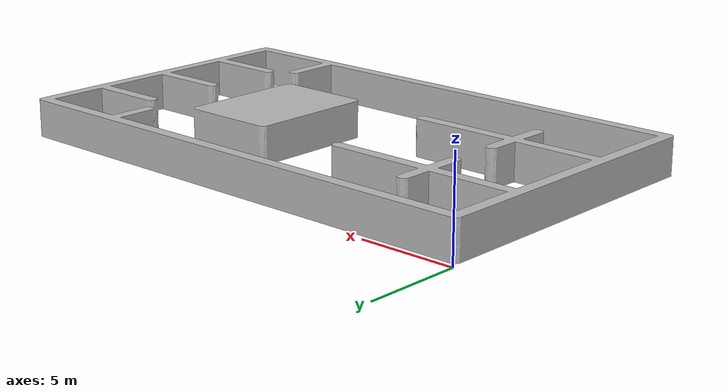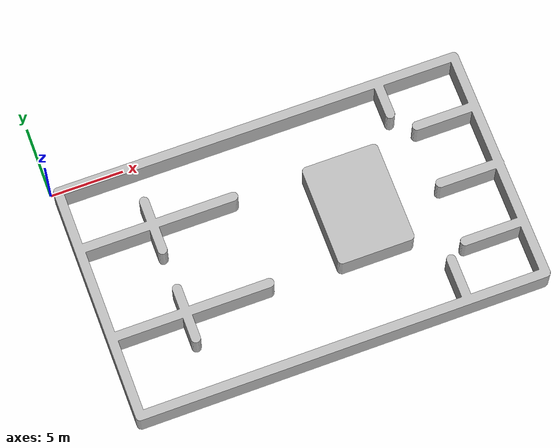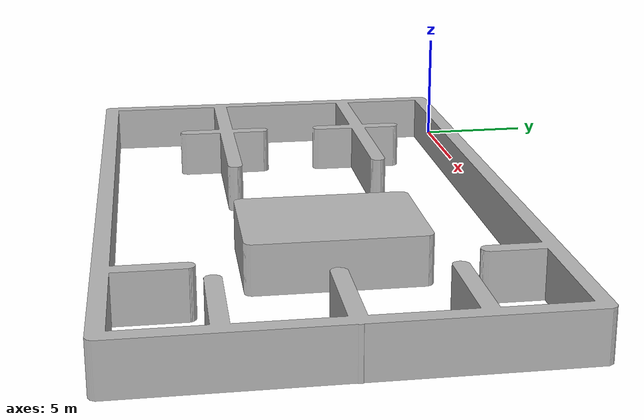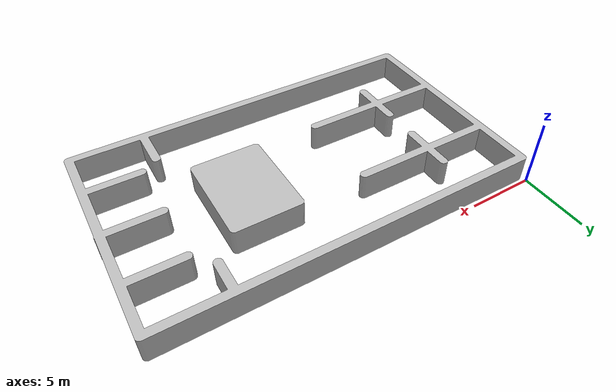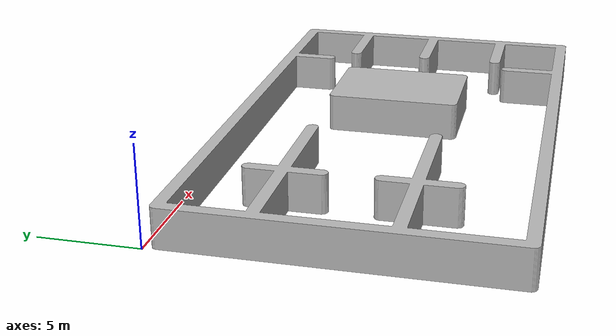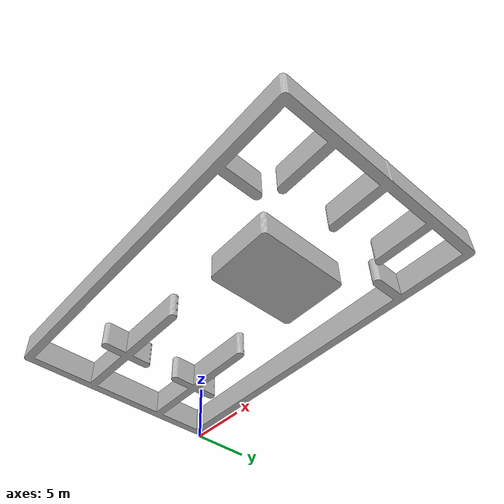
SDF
<?xml version="1.0" ?>
<sdf version="1.4">
  <model name="/home/kriss/ros2_ws/src/vikings_bot/vikings_bot_gazebo/models/warehouse_model">
    <link name="link">
      <inertial>
        <mass>1</mass>
        <inertia>
          <ixx>0.0</ixx>
          <ixy>0.0</ixy>
          <ixz>0.0</ixz>
          <iyy>0.0</iyy>
          <iyz>0.0</iyz>
          <izz>0.0</izz>
        </inertia>
      </inertial>
      <collision name="collision">
        <pose>0 0 0 0 0 0</pose>
        <geometry>
          <mesh>
            <uri>model://warehouse_model/map.stl</uri>
          </mesh>
        </geometry>
      </collision>
      <visual name="visual">
        <pose>0 0 0 0 0 0</pose>
        <geometry>
          <mesh>
            <uri>model://warehouse_model/map.stl</uri>
          </mesh>
        </geometry>
      </visual>
    </link>
    <static>1</static>
  </model>
</sdf>
